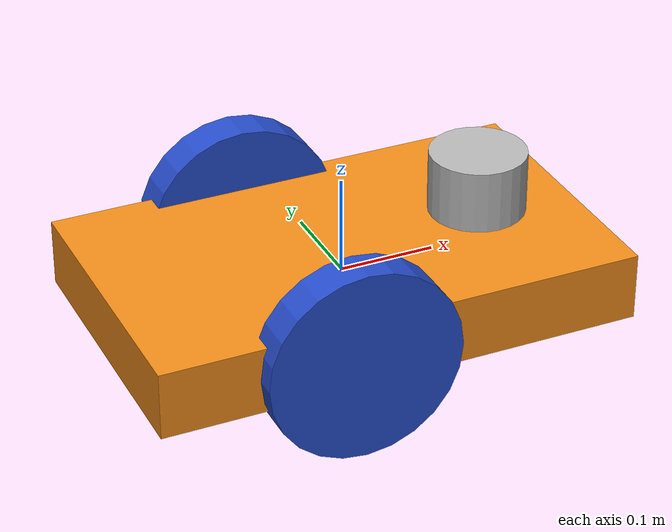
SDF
<sdf version='1.6'>
  <model name='m2wr'>
    <link name='link_chassis'>
      <pose frame=''>0 0 0 0 -0 0</pose>
      <inertial>
        <pose frame=''>0.025 0 0.091667 0 -0 0</pose>
        <mass>6</mass>
        <inertia>
          <ixx>0.0430833</ixx>
          <ixy>0</ixy>
          <ixz>0.00625</ixz>
          <iyy>0.1285</iyy>
          <iyz>0</iyz>
          <izz>0.126208</izz>
        </inertia>
      </inertial>
      <collision name='link_chassis_fixed_joint_lump__collision_chassis_collision'>
        <pose frame=''>0 0 0 0 -0 0</pose>
        <geometry>
          <box>
            <size>0.5 0.3 0.07</size>
          </box>
        </geometry>
      </collision>
      <collision name='link_chassis_fixed_joint_lump__caster_front_collision_collision_1'>
        <pose frame=''>0.2 0 -0.05 0 -0 0</pose>
        <geometry>
          <sphere>
            <radius>0.05</radius>
          </sphere>
        </geometry>
      </collision>
      <collision name='link_chassis_fixed_joint_lump__sensor_laser_collision_2'>
        <pose frame=''>0.15 0 0.05 0 -0 0</pose>
        <geometry>
          <cylinder>
            <length>0.1</length>
            <radius>0.05</radius>
          </cylinder>
        </geometry>
        <surface>
          <contact>
            <ode/>
          </contact>
          <friction>
            <ode/>
          </friction>
        </surface>
      </collision>
      <visual name='link_chassis_visual'>
        <pose frame=''>0 0 0 0 -0 0</pose>
        <geometry>
          <box>
            <size>0.5 0.3 0.07</size>
          </box>
        </geometry>
        <material>
          <script>
            <uri>file://media/materials/scripts/gazebo.material</uri>
            <name>Gazebo/Orange</name>
          </script>
        </material>
      </visual>
      <visual name='link_chassis_fixed_joint_lump__caster_front_visual_visual_1'>
        <pose frame=''>0.2 0 -0.05 0 -0 0</pose>
        <geometry>
          <sphere>
            <radius>0.05</radius>
          </sphere>
        </geometry>
        <material>
          <script>
            <uri>file://media/materials/scripts/gazebo.material</uri>
            <name>Gazebo/Orange</name>
          </script>
        </material>
      </visual>
      <visual name='link_chassis_fixed_joint_lump__sensor_laser_visual_2'>
        <pose frame=''>0.15 0 0.05 0 -0 0</pose>
        <geometry>
          <cylinder>
            <length>0.1</length>
            <radius>0.05</radius>
          </cylinder>
        </geometry>
        <material>
          <script>
            <uri>__default__</uri>
            <name>__default__</name>
          </script>
        </material>
      </visual>
      <velocity_decay/>
      <gravity>1</gravity>
      <velocity_decay/>
      <sensor name='head_hokuyo_sensor' type='ray'>
        <visualize>0</visualize>
        <update_rate>20</update_rate>
        <ray>
          <scan>
            <horizontal>
              <samples>720</samples>
              <resolution>1</resolution>
              <min_angle>-1.5708</min_angle>
              <max_angle>1.5708</max_angle>
            </horizontal>
          </scan>
          <range>
            <min>0.1</min>
            <max>10</max>
            <resolution>0.01</resolution>
          </range>
          <noise>
            <type>gaussian</type>
            <mean>0</mean>
            <stddev>0.01</stddev>
          </noise>
        </ray>
        <plugin name='gazebo_ros_head_hokuyo_controller' filename='libgazebo_ros_laser.so'>
          <topicName>/m2wr/laser/scan</topicName>
          <frameName>sensor_laser</frameName>
        </plugin>
        <pose frame=''>0.15 0 0.05 0 -0 0</pose>
      </sensor>
    </link>
    <link name='link_left_wheel'>
      <pose frame=''>-0.05 -0.15 0 0 -0 0</pose>
      <inertial>
        <pose frame=''>0 0 0 0 1.5707 1.5707</pose>
        <mass>0.2</mass>
        <inertia>
          <ixx>0.000526667</ixx>
          <ixy>0</ixy>
          <ixz>0</ixz>
          <iyy>0.000526667</iyy>
          <iyz>0</iyz>
          <izz>0.001</izz>
        </inertia>
      </inertial>
      <collision name='link_left_wheel_collision_collision'>
        <pose frame=''>0 0 0 0 1.5707 1.5707</pose>
        <geometry>
          <cylinder>
            <length>0.04</length>
            <radius>0.1</radius>
          </cylinder>
        </geometry>
        <surface>
          <contact>
            <ode/>
          </contact>
          <friction>
            <ode/>
          </friction>
        </surface>
      </collision>
      <visual name='link_left_wheel_visual_visual'>
        <pose frame=''>0 0 0 0 1.5707 1.5707</pose>
        <geometry>
          <cylinder>
            <length>0.04</length>
            <radius>0.1</radius>
          </cylinder>
        </geometry>
        <material>
          <script>
            <name>Gazebo/Blue</name>
            <uri>file://media/materials/scripts/gazebo.material</uri>
          </script>
        </material>
      </visual>
      <gravity>1</gravity>
      <velocity_decay/>
    </link>
    <joint name='joint_left_wheel' type='revolute'>
      <child>link_left_wheel</child>
      <parent>link_chassis</parent>
      <axis>
        <xyz>0 1 0</xyz>
        <limit>
          <lower>-1e+16</lower>
          <upper>1e+16</upper>
        </limit>
        <dynamics>
          <spring_reference>0</spring_reference>
          <spring_stiffness>0</spring_stiffness>
        </dynamics>
        <use_parent_model_frame>1</use_parent_model_frame>
      </axis>
    </joint>
    <link name='link_right_wheel'>
      <pose frame=''>-0.05 0.15 0 0 -0 0</pose>
      <inertial>
        <pose frame=''>0 0 0 0 1.5707 1.5707</pose>
        <mass>0.2</mass>
        <inertia>
          <ixx>0.000526667</ixx>
          <ixy>0</ixy>
          <ixz>0</ixz>
          <iyy>0.000526667</iyy>
          <iyz>0</iyz>
          <izz>0.001</izz>
        </inertia>
      </inertial>
      <collision name='link_right_wheel_collision_collision'>
        <pose frame=''>0 0 0 0 1.5707 1.5707</pose>
        <geometry>
          <cylinder>
            <length>0.04</length>
            <radius>0.1</radius>
          </cylinder>
        </geometry>
        <surface>
          <contact>
            <ode/>
          </contact>
          <friction>
            <ode/>
          </friction>
        </surface>
      </collision>
      <visual name='link_right_wheel_visual_visual'>
        <pose frame=''>0 0 0 0 1.5707 1.5707</pose>
        <geometry>
          <cylinder>
            <length>0.04</length>
            <radius>0.1</radius>
          </cylinder>
        </geometry>
        <material>
          <script>
            <name>Gazebo/Blue</name>
            <uri>file://media/materials/scripts/gazebo.material</uri>
          </script>
        </material>
      </visual>
      <gravity>1</gravity>
      <velocity_decay/>
    </link>
    <joint name='joint_right_wheel' type='revolute'>
      <child>link_right_wheel</child>
      <parent>link_chassis</parent>
      <axis>
        <xyz>0 1 0</xyz>
        <limit>
          <lower>-1e+16</lower>
          <upper>1e+16</upper>
        </limit>
        <dynamics>
          <spring_reference>0</spring_reference>
          <spring_stiffness>0</spring_stiffness>
        </dynamics>
        <use_parent_model_frame>1</use_parent_model_frame>
      </axis>
    </joint>
    <static>0</static>
    <plugin name='differential_drive_controller' filename='libgazebo_ros_diff_drive.so'>
      <alwaysOn>true</alwaysOn>
      <legacyMode>false</legacyMode>
      <updateRate>20</updateRate>
      <robotNamespace>/</robotNamespace>
      <leftJoint>joint_left_wheel</leftJoint>
      <rightJoint>joint_right_wheel</rightJoint>
      <wheelSeparation>0.4</wheelSeparation>
      <wheelDiameter>0.2</wheelDiameter>
      <torque>0.1</torque>
      <commandTopic>cmd_vel</commandTopic>
      <odometryTopic>odom_diffdrive</odometryTopic>
      <odometryFrame>odom</odometryFrame>
      <odometrySource>world</odometrySource>
      <publishTf>1</publishTf>
      <publishOdomTF>true</publishOdomTF>
      <rosDebugLevel>na</rosDebugLevel>
      <wheelAcceleration>0</wheelAcceleration>
      <wheelTorque>5</wheelTorque>
      <robotBaseFrame>link_chassis</robotBaseFrame>
      <publishWheelTF>false</publishWheelTF>
      <publishWheelJointState>false</publishWheelJointState>
    </plugin>
  </model>
</sdf>
